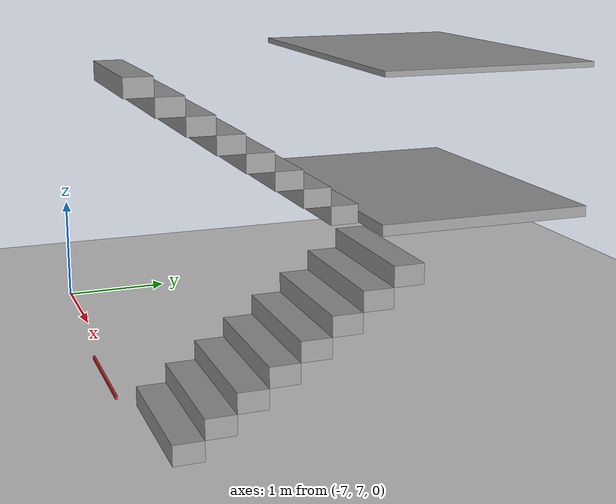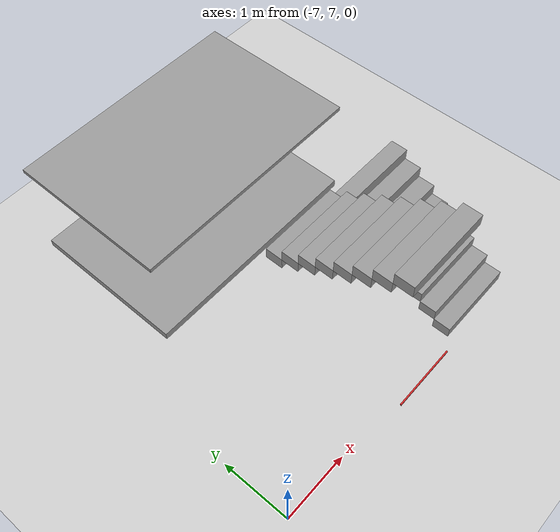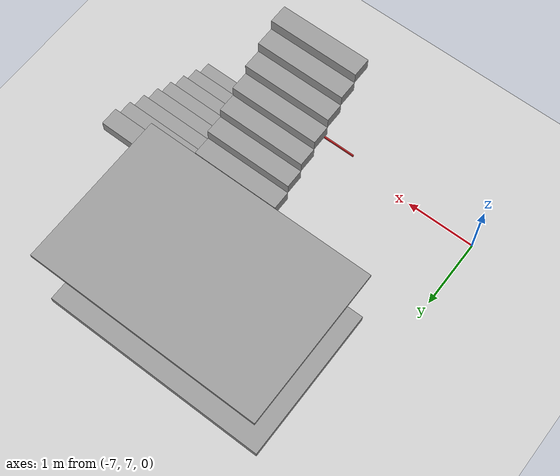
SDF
<sdf version="1.6">
 <world name="default">
  <light name="sun" type="directional"><cast_shadows>0</cast_shadows><pose>0 0 10 0 -0 0</pose></light>
  <model name="ground_plane">
   <static>1</static>
   <link name="link">
    <collision name="collision">
     <geometry><plane><normal>0 0 1</normal><size>100 100</size></plane></geometry>
     <surface><friction><ode><mu>100</mu><mu2>50</mu2></ode></friction></surface>
    </collision>
    <visual name="visual">
     <cast_shadows>0</cast_shadows>
     <geometry><plane><normal>0 0 1</normal><size>100 100</size></plane></geometry>
     <material>
      <script><uri>file://media/materials/scripts/gazebo.material</uri><name>Gazebo/Grey</name></script>
     </material>
    </visual>
   </link>
  </model>
  <gravity>0 0 -9.8</gravity>
  <magnetic_field>6e-06 2.3e-05 -4.2e-05</magnetic_field>
  <atmosphere type="adiabatic"/>
  <physics name="default_physics" default="0" type="ode">
   <max_step_size>0.001</max_step_size>
   <real_time_factor>1</real_time_factor>
   <real_time_update_rate>1000</real_time_update_rate>
  </physics>
  <scene><shadows>0</shadows></scene>
  <spherical_coordinates>
   <surface_model>EARTH_WGS84</surface_model>
   <latitude_deg>0</latitude_deg>
   <longitude_deg>0</longitude_deg>
   <elevation>0</elevation>
   <heading_deg>0</heading_deg>
  </spherical_coordinates>
  <model name="stairs_platform45">
   <pose>-5.153592 10.122335 1.325 0 -0 0</pose>
   <link name="link">
    <collision name="collision">
     <geometry><box><size>3 2 0.1</size></box></geometry>
     <surface><friction><ode><mu>100</mu><mu2>50</mu2></ode></friction></surface>
     <pose>0 0 0.05 0 -0 0</pose>
    </collision>
    <visual name="visual">
     <cast_shadows>0</cast_shadows>
     <geometry><box><size>3 2 0.1</size></box></geometry>
     <material>
      <script><uri>file://media/materials/scripts/gazebo.material</uri><name>Gazebo/Grey</name></script>
     </material>
    </visual>
   </link>
   <static>1</static>
  </model>
  <model name="stairs_platform5">
   <pose>-5.153592 10.122335 2.65 0 -0 0</pose>
   <link name="link">
    <collision name="collision">
     <geometry><box><size>3 2 0.05</size></box></geometry>
     <surface><friction><ode><mu>100</mu><mu2>50</mu2></ode></friction></surface>
     <pose>0 0 0.025 0 -0 0</pose>
    </collision>
    <visual name="visual">
     <cast_shadows>0</cast_shadows>
     <geometry><box><size>3 2 0.05</size></box></geometry>
     <material>
      <script><uri>file://media/materials/scripts/gazebo.material</uri><name>Gazebo/Grey</name></script>
     </material>
    </visual>
   </link>
   <static>1</static>
  </model>
  <model name="start_line">
   <pose>-4.5 6.875 0 0 0 0</pose>
   <link name="link">
    <collision name="collision">
     <geometry><box><size>1 0.02 0.05</size></box></geometry>
     <surface><friction><ode><mu>100</mu><mu2>50</mu2></ode></friction></surface>
     <pose>0 0 0.025 0 -0 0</pose>
    </collision>
    <visual name="visual">
     <cast_shadows>0</cast_shadows>
     <geometry><box><size>1 0.02 0.05</size></box></geometry>
     <material>
      <script><uri>file://media/materials/scripts/gazebo.material</uri><name>Gazebo/Red</name></script>
     </material>
    </visual>
   </link>
   <static>1</static>
  </model>
  <include>
   <uri>model://rs_gazebo/models/ss_hq4/stairs_45</uri>
   <name>stairs_45_1</name>
   <pose>-3.2 8.0 0 0 0 3.14</pose>
  </include>
  <include>
   <uri>model://rs_gazebo/models/ss_hq4/stairs_45</uri>
   <name>stairs_45_2</name>
   <pose>-4.5 8.0 1.345 0 0 0</pose>
  </include>
 </world>
</sdf>

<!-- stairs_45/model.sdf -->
<sdf version='1.6'>
  <model name='stairs45'>
    <pose frame=''>0 0 0 0 -0 0</pose>
    <link name='Stairs_4'>
      <visual name='Stairs_4_Visual_0'>
        <pose frame=''>-0 0.875 0.084063 0 -0 0</pose>
        <geometry>
          <box>
            <size>1.2 0.25 0.168125</size>
          </box>
        </geometry>
        <material>
          <script>
            <uri>file://media/materials/scripts/gazebo.material</uri>
            <name>Gazebo/Grey</name>
          </script>
          <ambient>1 1 1 1</ambient>
        </material>
        <meta>
          <layer>0</layer>
        </meta>
      </visual>
      <collision name='Stairs_4_Collision_0'>
        <geometry>
          <box>
            <size>1.2 0.25 0.168125</size>
          </box>
        </geometry>
        <pose frame=''>-0 0.875 0.084063 0 -0 0</pose>
      </collision>
      <visual name='Stairs_4_Visual_1'>
        <pose frame=''>-0 0.625 0.252187 0 -0 0</pose>
        <geometry>
          <box>
            <size>1.2 0.25 0.168125</size>
          </box>
        </geometry>
        <material>
          <script>
            <uri>file://media/materials/scripts/gazebo.material</uri>
            <name>Gazebo/Grey</name>
          </script>
          <ambient>1 1 1 1</ambient>
        </material>
        <meta>
          <layer>0</layer>
        </meta>
      </visual>
      <collision name='Stairs_4_Collision_1'>
        <geometry>
          <box>
            <size>1.2 0.25 0.168125</size>
          </box>
        </geometry>
        <pose frame=''>-0 0.625 0.252187 0 -0 0</pose>
      </collision>
      <visual name='Stairs_4_Visual_2'>
        <pose frame=''>-0 0.375 0.420313 0 -0 0</pose>
        <geometry>
          <box>
            <size>1.2 0.25 0.168125</size>
          </box>
        </geometry>
        <material>
          <script>
            <uri>file://media/materials/scripts/gazebo.material</uri>
            <name>Gazebo/Grey</name>
          </script>
          <ambient>1 1 1 1</ambient>
        </material>
        <meta>
          <layer>0</layer>
        </meta>
      </visual>
      <collision name='Stairs_4_Collision_2'>
        <geometry>
          <box>
            <size>1.2 0.25 0.168125</size>
          </box>
        </geometry>
        <pose frame=''>-0 0.375 0.420313 0 -0 0</pose>
      </collision>
      <visual name='Stairs_4_Visual_3'>
        <pose frame=''>-0 0.125 0.588437 0 -0 0</pose>
        <geometry>
          <box>
            <size>1.2 0.25 0.168125</size>
          </box>
        </geometry>
        <material>
          <script>
            <uri>file://media/materials/scripts/gazebo.material</uri>
            <name>Gazebo/Grey</name>
          </script>
          <ambient>1 1 1 1</ambient>
        </material>
        <meta>
          <layer>0</layer>
        </meta>
      </visual>
      <collision name='Stairs_4_Collision_3'>
        <geometry>
          <box>
            <size>1.2 0.25 0.168125</size>
          </box>
        </geometry>
        <pose frame=''>-0 0.125 0.588437 0 -0 0</pose>
      </collision>
      <visual name='Stairs_4_Visual_4'>
        <pose frame=''>-0 -0.125 0.756563 0 -0 0</pose>
        <geometry>
          <box>
            <size>1.2 0.25 0.168125</size>
          </box>
        </geometry>
        <material>
          <script>
            <uri>file://media/materials/scripts/gazebo.material</uri>
            <name>Gazebo/Grey</name>
          </script>
          <ambient>1 1 1 1</ambient>
        </material>
        <meta>
          <layer>0</layer>
        </meta>
      </visual>
      <collision name='Stairs_4_Collision_4'>
        <geometry>
          <box>
            <size>1.2 0.25 0.168125</size>
          </box>
        </geometry>
        <pose frame=''>-0 -0.125 0.756563 0 -0 0</pose>
      </collision>
      <visual name='Stairs_4_Visual_5'>
        <pose frame=''>-0 -0.375 0.924688 0 -0 0</pose>
        <geometry>
          <box>
            <size>1.2 0.25 0.168125</size>
          </box>
        </geometry>
        <material>
          <script>
            <uri>file://media/materials/scripts/gazebo.material</uri>
            <name>Gazebo/Grey</name>
          </script>
          <ambient>1 1 1 1</ambient>
        </material>
        <meta>
          <layer>0</layer>
        </meta>
      </visual>
      <collision name='Stairs_4_Collision_5'>
        <geometry>
          <box>
            <size>1.2 0.25 0.168125</size>
          </box>
        </geometry>
        <pose frame=''>-0 -0.375 0.924688 0 -0 0</pose>
      </collision>
      <visual name='Stairs_4_Visual_6'>
        <pose frame=''>-0 -0.625 1.09281 0 -0 0</pose>
        <geometry>
          <box>
            <size>1.2 0.25 0.168125</size>
          </box>
        </geometry>
        <material>
          <script>
            <uri>file://media/materials/scripts/gazebo.material</uri>
            <name>Gazebo/Grey</name>
          </script>
          <ambient>1 1 1 1</ambient>
        </material>
        <meta>
          <layer>0</layer>
        </meta>
      </visual>
      <collision name='Stairs_4_Collision_6'>
        <geometry>
          <box>
            <size>1.2 0.25 0.168125</size>
          </box>
        </geometry>
        <pose frame=''>-0 -0.625 1.09281 0 -0 0</pose>
      </collision>
      <visual name='Stairs_4_Visual_7'>
        <pose frame=''>-0 -0.875 1.26094 0 -0 0</pose>
        <geometry>
          <box>
            <size>1.2 0.25 0.168125</size>
          </box>
        </geometry>
        <material>
          <script>
            <uri>file://media/materials/scripts/gazebo.material</uri>
            <name>Gazebo/Grey</name>
          </script>
          <ambient>1 1 1 1</ambient>
        </material>
        <meta>
          <layer>0</layer>
        </meta>
      </visual>
      <collision name='Stairs_4_Collision_7'>
        <geometry>
          <box>
            <size>1.2 0.25 0.168125</size>
          </box>
        </geometry>
        <pose frame=''>-0 -0.875 1.26094 0 -0 0</pose>
      </collision>
    </link>
    <static>1</static>
  </model>
</sdf>
